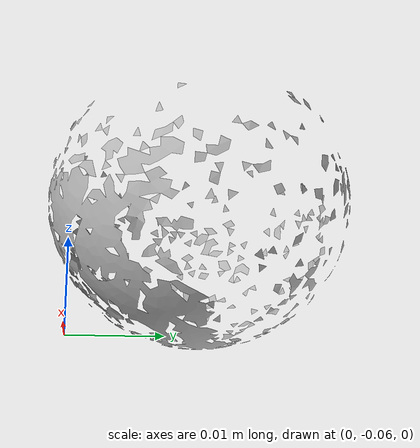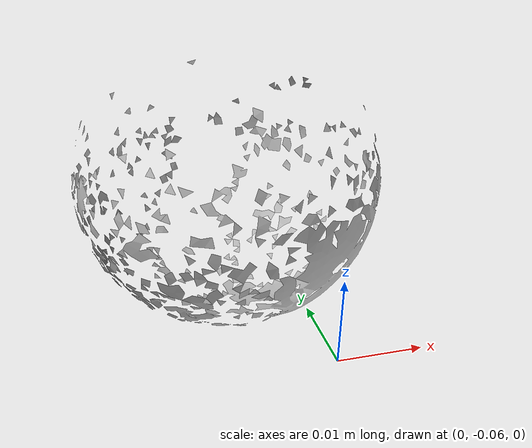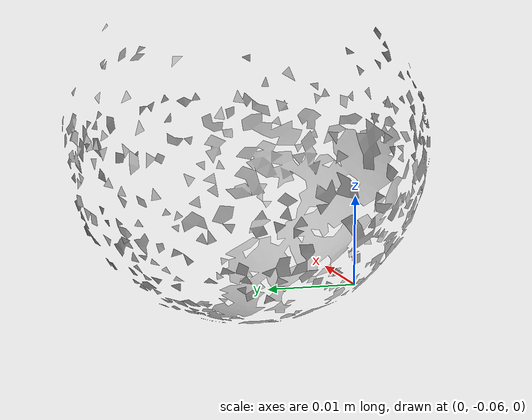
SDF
<?xml version="1.0" ?>
<sdf version="1.4">
  <model name='ycb_063-b_marbles'>
    <link name='body'>
      <inertial>
        <mass>0.029554908529</mass>
        <pose>-0.0091119042596 -0.0451123314217 0.0168451398049 0 0 0</pose>
        <inertia>
          <ixx>3.53527846539e-06</ixx>
          <ixy>-8.34172410313e-09</ixy>
          <ixz>-4.99416448909e-09</ixz>
          <iyy>3.55231958172e-06</iyy>
          <iyz>-9.70791131977e-09</iyz>
          <izz>3.59646658209e-06</izz>
        </inertia>
      </inertial>
      <visual name='ycb_063-b_marbles_visual'>
        <pose>0 0 0 0 0 0</pose>
        <geometry>
          <mesh>
            <uri>model://ycb_063-b_marbles/meshes/textured.dae</uri>
          </mesh>
        </geometry>
      </visual>
      <collision name='ycb_063-b_marbles_collision'>
        <pose>0 0 0 0 0 0</pose>
        <geometry>
          <mesh>
            <uri>model://ycb_063-b_marbles/meshes/nontextured.stl</uri>
          </mesh>
        </geometry>
        <max_contacts>10</max_contacts>
      </collision>
    </link>
  </model>
</sdf>
